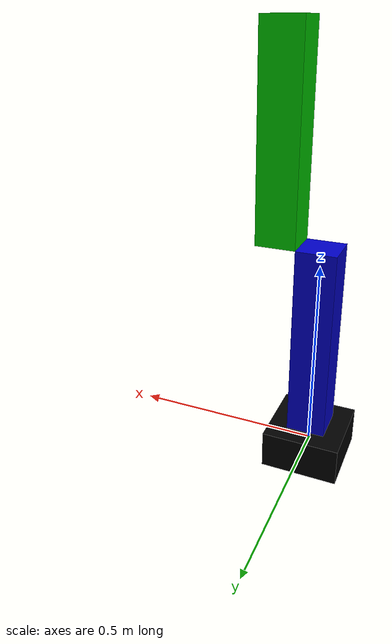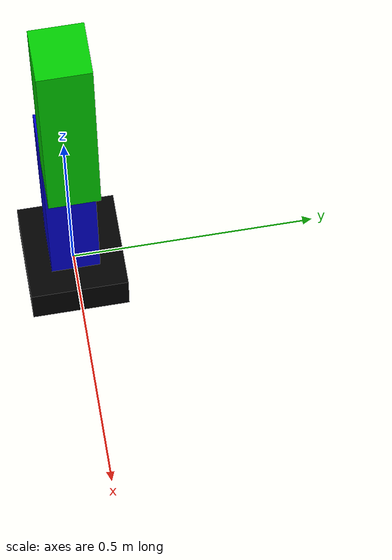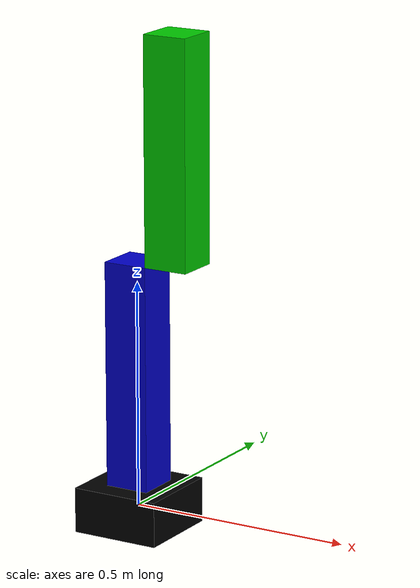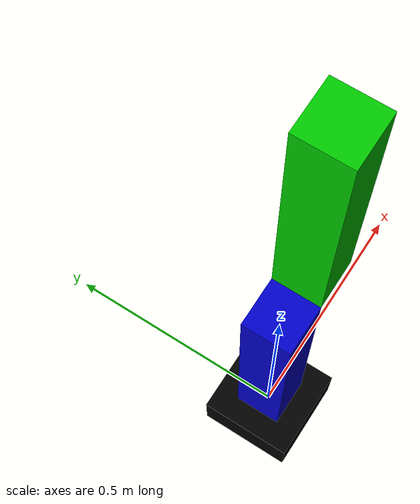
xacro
<?xml version="1.0"?>
<robot name="rrbot"
  xmlns:xacro="http://www.ros.org/wiki/xacro">

  <!-- マテリアルの定義 -->
  <material name="black">
    <color rgba="0 0 0 1"/>
  </material>
  <material name="blue">
    <color rgba="0 0 0.8 1"/>
  </material>
  <material name="green">
    <color rgba="0 0.8 0 1"/>
  </material>

  <!-- 固定ベース -->
  <link name="base_link">
    <visual>
      <geometry>
        <box size="0.2 0.2 0.1"/>
      </geometry>
      <material name="black"/>
    </visual>
    <collision>
      <geometry>
        <box size="0.2 0.2 0.1"/>
      </geometry>
    </collision>
    <inertial>
      <mass value="1"/>
      <inertia ixx="0.0016" ixy="0" ixz="0" iyy="0.0016" iyz="0" izz="0.0016"/>
    </inertial>
  </link>

  <!-- リンク1 -->
  <link name="link1">
    <visual>
      <geometry>
        <box size="0.1 0.1 0.5"/>
      </geometry>
      <origin xyz="0 0 0.25" rpy="0 0 0"/>
      <material name="blue"/>
    </visual>
    <collision>
      <geometry>
        <box size="0.1 0.1 0.5"/>
      </geometry>
      <origin xyz="0 0 0.25" rpy="0 0 0"/>
    </collision>
    <inertial>
      <origin xyz="0 0 0.25" rpy="0 0 0"/>
      <mass value="1"/>
      <inertia ixx="0.021" ixy="0" ixz="0" iyy="0.021" iyz="0" izz="0.0016"/>
    </inertial>
  </link>

  <!-- リンク2 -->
  <link name="link2">
    <visual>
      <geometry>
        <box size="0.1 0.1 0.5"/>
      </geometry>
      <origin xyz="0 0 0.25" rpy="0 0 0"/>
      <material name="green"/>
    </visual>
    <collision>
      <geometry>
        <box size="0.1 0.1 0.5"/>
      </geometry>
      <origin xyz="0 0 0.25" rpy="0 0 0"/>
    </collision>
    <inertial>
      <origin xyz="0 0 0.25" rpy="0 0 0"/>
      <mass value="1"/>
      <inertia ixx="0.021" ixy="0" ixz="0" iyy="0.021" iyz="0" izz="0.0016"/>
    </inertial>
  </link>

  <!-- ジョイント1 -->
  <joint name="joint1" type="revolute">
    <parent link="base_link"/>
    <child link="link1"/>
    <origin xyz="0.0 0 0.05" rpy="0 0 0"/>
    <axis xyz="1 0 0"/>
    <limit lower="-3.14" upper="3.14" effort="100" velocity="100"/>
  </joint>

  <!-- ジョイント2 -->
  <joint name="joint2" type="revolute">
    <parent link="link1"/>
    <child link="link2"/>
    <origin xyz="0.1 0 0.5" rpy="0 0 0"/>
    <axis xyz="1 0 0"/>
    <limit lower="-3.14" upper="3.14" effort="100" velocity="100"/>
  </joint>

  <!-- Gazebo用の設定 -->
  <gazebo reference="base_link">
    <material>Gazebo/Black</material>
    <mu1>0.2</mu1>
    <mu2>0.2</mu2>
  </gazebo>

  <gazebo reference="link1">
    <material>Gazebo/Blue</material>
    <mu1>0.2</mu1>
    <mu2>0.2</mu2>
    <damping>0.1</damping>
  </gazebo>

  <gazebo reference="link2">
    <material>Gazebo/Green</material>
    <mu1>0.2</mu1>
    <mu2>0.2</mu2>
    <damping>0.1</damping>
  </gazebo>

  <gazebo>
    <plugin filename="ignition-gazebo-forcetorque-system" name="ignition::gazebo::systems::ForceTorque"></plugin>
  </gazebo>
  <gazebo>
    <plugin filename="ignition-gazebo-contact-system" name="ignition::gazebo::systems::Contact">
    </plugin>
  </gazebo>

  <gazebo reference="joint1">
    <sensor name="joint1_ft_sensor" type="force_torque">
    </sensor>
  </gazebo>

  <gazebo reference="joint2">
    <sensor name="joint2_ft_sensor" type="force_torque">
    </sensor>
  </gazebo>

  <gazebo reference="link1">
    <sensor name="link1_contact" type="contact">
      <always_on>1</always_on>
      <contact>
        <collision>link1_collision</collision>
      </contact>
    </sensor>
  </gazebo>

  <gazebo reference="link2">
    <sensor name="link2_contact" type="contact">
      <always_on>1</always_on>
      <contact>
        <collision>link2_collision</collision>
      </contact>
    </sensor>
  </gazebo>

</robot>
